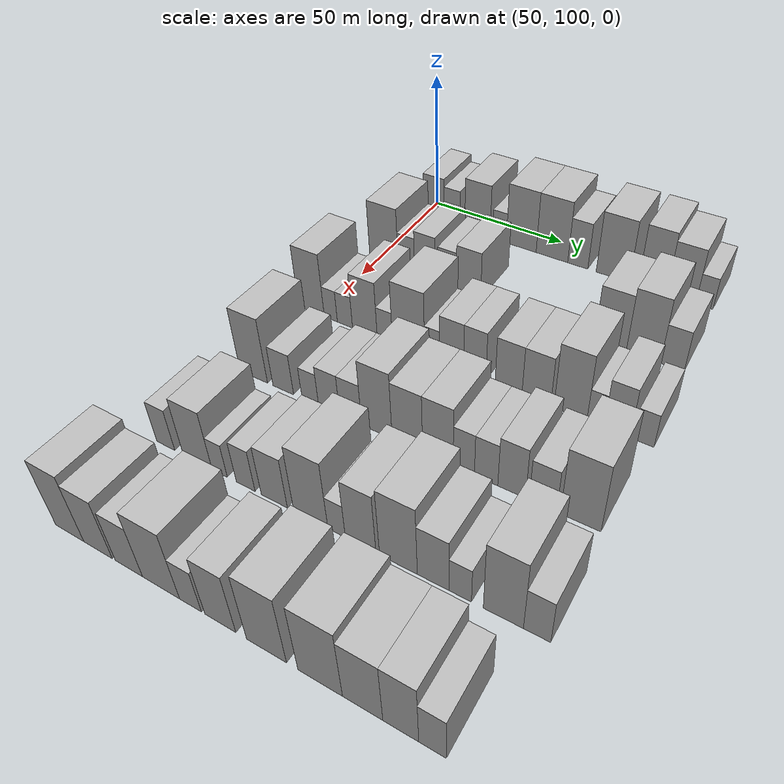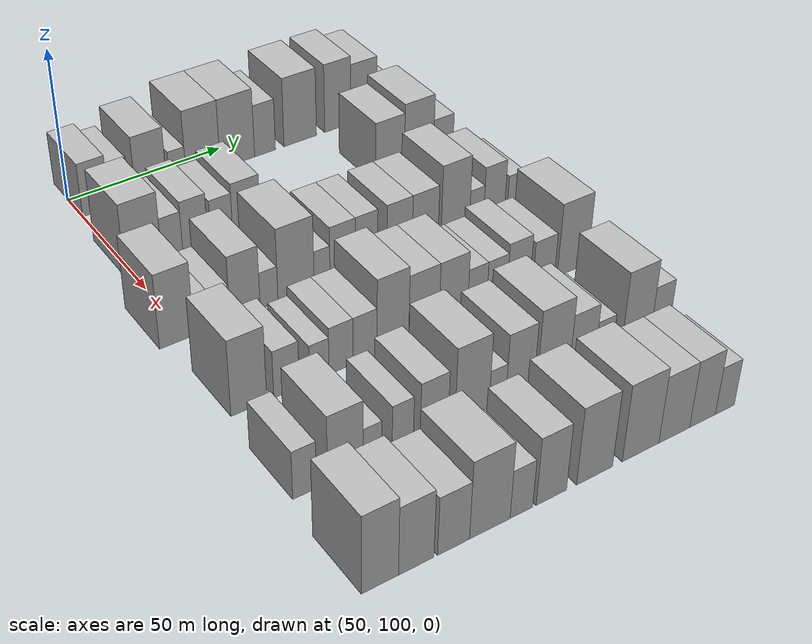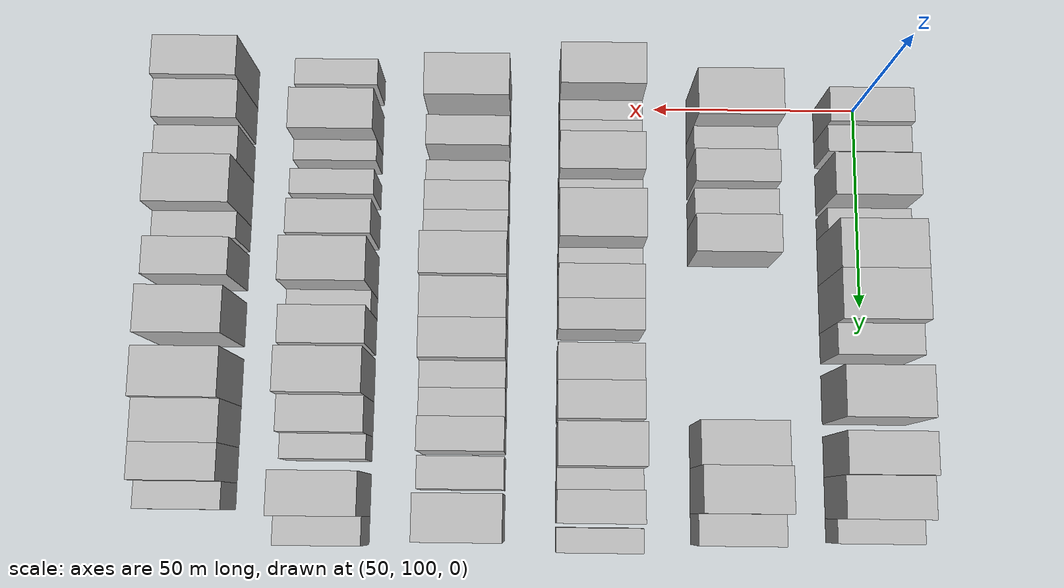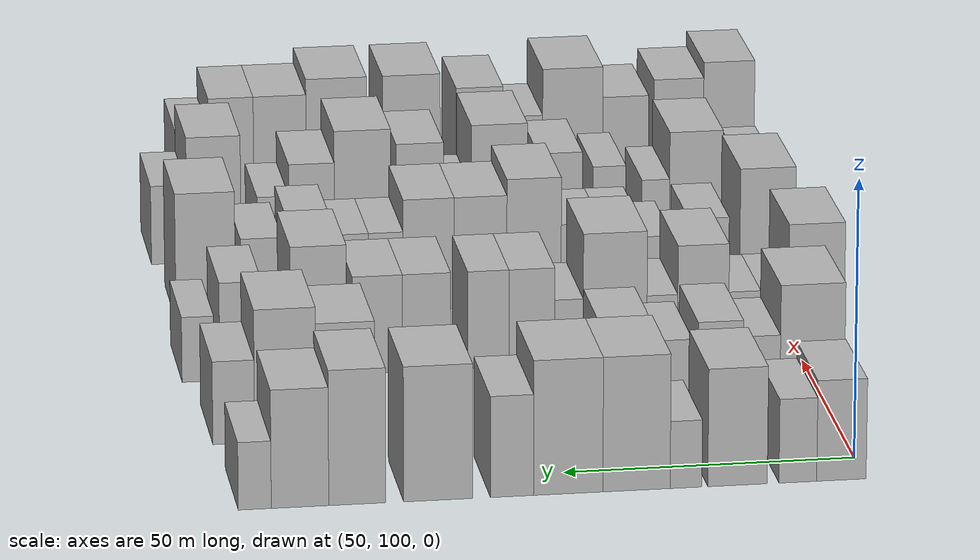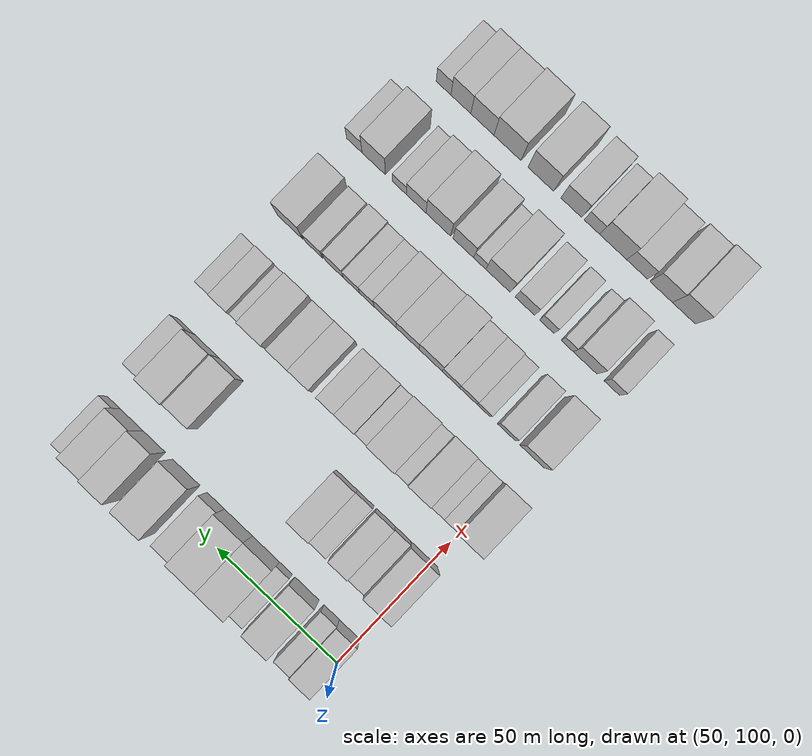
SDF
<sdf version="1.6">
 <world name="default">
  <model name="building_76">
   <static>1</static>
   <pose>50.0000 104.1715 0 0.000000 0.000000 0.000000</pose>
   <link name="link">
    <pose>0 0 9.00 0 0 0</pose>
    <collision name="collision"><geometry><box><size>20.0000 8.4685 18.0000</size></box></geometry></collision>
    <visual name="visual">
     <cast_shadows>0</cast_shadows>
     <geometry><box><size>20.0000 8.4685 18.0000</size></box></geometry>
     <material>
      <script>
       <uri>model://HANNAS_wall/materials/scripts</uri>
       <uri>model://HANNAS_wall/materials/textures</uri>
       <name>vrc/HANNAS_wall</name>
      </script>
     </material>
    </visual>
   </link>
  </model>
  <model name="building_77">
   <static>1</static>
   <pose>50.0000 111.6407 0 0.000000 0.000000 0.000000</pose>
   <link name="link">
    <pose>0 0 7.50 0 0 0</pose>
    <collision name="collision"><geometry><box><size>20.0000 6.4699 15.0000</size></box></geometry></collision>
    <visual name="visual">
     <cast_shadows>0</cast_shadows>
     <geometry><box><size>20.0000 6.4699 15.0000</size></box></geometry>
     <material>
      <script>
       <uri>model://HANNAS_wall/materials/scripts</uri>
       <uri>model://HANNAS_wall/materials/textures</uri>
       <name>vrc/HANNAS_wall</name>
      </script>
     </material>
    </visual>
   </link>
  </model>
  <model name="building_78">
   <static>1</static>
   <pose>50.0000 121.9559 0 0.000000 0.000000 0.000000</pose>
   <link name="link">
    <pose>0 0 10.50 0 0 0</pose>
    <collision name="collision"><geometry><box><size>20.0000 10.1604 21.0000</size></box></geometry></collision>
    <visual name="visual">
     <cast_shadows>0</cast_shadows>
     <geometry><box><size>20.0000 10.1604 21.0000</size></box></geometry>
     <material>
      <script>
       <uri>model://HANNAS_wall/materials/scripts</uri>
       <uri>model://HANNAS_wall/materials/textures</uri>
       <name>vrc/HANNAS_wall</name>
      </script>
     </material>
    </visual>
   </link>
  </model>
  <model name="building_79">
   <static>1</static>
   <pose>50.0000 130.7467 0 0.000000 0.000000 0.000000</pose>
   <link name="link">
    <pose>0 0 6.00 0 0 0</pose>
    <collision name="collision"><geometry><box><size>20.0000 5.4213 12.0000</size></box></geometry></collision>
    <visual name="visual">
     <cast_shadows>0</cast_shadows>
     <geometry><box><size>20.0000 5.4213 12.0000</size></box></geometry>
     <material>
      <script>
       <uri>model://HANNAS_wall/materials/scripts</uri>
       <uri>model://HANNAS_wall/materials/textures</uri>
       <name>vrc/HANNAS_wall</name>
      </script>
     </material>
    </visual>
   </link>
  </model>
  <model name="building_80">
   <static>1</static>
   <pose>50.0000 139.1861 0 0.000000 0.000000 0.000000</pose>
   <link name="link">
    <pose>0 0 12.00 0 0 0</pose>
    <collision name="collision"><geometry><box><size>20.0000 11.4577 24.0000</size></box></geometry></collision>
    <visual name="visual">
     <cast_shadows>0</cast_shadows>
     <geometry><box><size>20.0000 11.4577 24.0000</size></box></geometry>
     <material>
      <script>
       <uri>model://HANNAS_wall/materials/scripts</uri>
       <uri>model://HANNAS_wall/materials/textures</uri>
       <name>vrc/HANNAS_wall</name>
      </script>
     </material>
    </visual>
   </link>
  </model>
  <model name="building_81">
   <static>1</static>
   <pose>50.0000 150.8063 0 0.000000 0.000000 0.000000</pose>
   <link name="link">
    <pose>0 0 12.00 0 0 0</pose>
    <collision name="collision"><geometry><box><size>20.0000 11.7827 24.0000</size></box></geometry></collision>
    <visual name="visual">
     <cast_shadows>0</cast_shadows>
     <geometry><box><size>20.0000 11.7827 24.0000</size></box></geometry>
     <material>
      <script>
       <uri>model://HANNAS_wall/materials/scripts</uri>
       <uri>model://HANNAS_wall/materials/textures</uri>
       <name>vrc/HANNAS_wall</name>
      </script>
     </material>
    </visual>
   </link>
  </model>
  <model name="building_82">
   <static>1</static>
   <pose>50.0000 160.3540 0 0.000000 0.000000 0.000000</pose>
   <link name="link">
    <pose>0 0 9.00 0 0 0</pose>
    <collision name="collision"><geometry><box><size>20.0000 7.3127 18.0000</size></box></geometry></collision>
    <visual name="visual">
     <cast_shadows>0</cast_shadows>
     <geometry><box><size>20.0000 7.3127 18.0000</size></box></geometry>
     <material>
      <script>
       <uri>model://HANNAS_wall/materials/scripts</uri>
       <uri>model://HANNAS_wall/materials/textures</uri>
       <name>vrc/HANNAS_wall</name>
      </script>
     </material>
    </visual>
   </link>
  </model>
  <model name="building_83">
   <static>1</static>
   <pose>50.0000 172.8455 0 0.000000 0.000000 0.000000</pose>
   <link name="link">
    <pose>0 0 12.00 0 0 0</pose>
    <collision name="collision"><geometry><box><size>20.0000 11.6702 24.0000</size></box></geometry></collision>
    <visual name="visual">
     <cast_shadows>0</cast_shadows>
     <geometry><box><size>20.0000 11.6702 24.0000</size></box></geometry>
     <material>
      <script>
       <uri>model://HANNAS_wall/materials/scripts</uri>
       <uri>model://HANNAS_wall/materials/textures</uri>
       <name>vrc/HANNAS_wall</name>
      </script>
     </material>
    </visual>
   </link>
  </model>
  <model name="building_84">
   <static>1</static>
   <pose>50.0000 186.4959 0 0.000000 0.000000 0.000000</pose>
   <link name="link">
    <pose>0 0 12.00 0 0 0</pose>
    <collision name="collision"><geometry><box><size>20.0000 9.6305 24.0000</size></box></geometry></collision>
    <visual name="visual">
     <cast_shadows>0</cast_shadows>
     <geometry><box><size>20.0000 9.6305 24.0000</size></box></geometry>
     <material>
      <script>
       <uri>model://HANNAS_wall/materials/scripts</uri>
       <uri>model://HANNAS_wall/materials/textures</uri>
       <name>vrc/HANNAS_wall</name>
      </script>
     </material>
    </visual>
   </link>
  </model>
  <model name="building_85">
   <static>1</static>
   <pose>50.0000 196.1493 0 0.000000 0.000000 0.000000</pose>
   <link name="link">
    <pose>0 0 10.50 0 0 0</pose>
    <collision name="collision"><geometry><box><size>20.0000 9.6764 21.0000</size></box></geometry></collision>
    <visual name="visual">
     <cast_shadows>0</cast_shadows>
     <geometry><box><size>20.0000 9.6764 21.0000</size></box></geometry>
     <material>
      <script>
       <uri>model://HANNAS_wall/materials/scripts</uri>
       <uri>model://HANNAS_wall/materials/textures</uri>
       <name>vrc/HANNAS_wall</name>
      </script>
     </material>
    </visual>
   </link>
  </model>
  <model name="building_86">
   <static>1</static>
   <pose>50.0000 203.7623 0 0.000000 0.000000 0.000000</pose>
   <link name="link">
    <pose>0 0 6.00 0 0 0</pose>
    <collision name="collision"><geometry><box><size>20.0000 5.5496 12.0000</size></box></geometry></collision>
    <visual name="visual">
     <cast_shadows>0</cast_shadows>
     <geometry><box><size>20.0000 5.5496 12.0000</size></box></geometry>
     <material>
      <script>
       <uri>model://HANNAS_wall/materials/scripts</uri>
       <uri>model://HANNAS_wall/materials/textures</uri>
       <name>vrc/HANNAS_wall</name>
      </script>
     </material>
    </visual>
   </link>
  </model>
  <model name="building_192">
   <static>1</static>
   <pose>82.0000 103.3964 0 0.000000 0.000000 0.000000</pose>
   <link name="link">
    <pose>0 0 12.00 0 0 0</pose>
    <collision name="collision"><geometry><box><size>20.0000 11.2871 24.0000</size></box></geometry></collision>
    <visual name="visual">
     <cast_shadows>0</cast_shadows>
     <geometry><box><size>20.0000 11.2871 24.0000</size></box></geometry>
     <material>
      <script>
       <uri>model://HANNAS_wall/materials/scripts</uri>
       <uri>model://HANNAS_wall/materials/textures</uri>
       <name>vrc/HANNAS_wall</name>
      </script>
     </material>
    </visual>
   </link>
  </model>
  <model name="building_193">
   <static>1</static>
   <pose>82.0000 112.2754 0 0.000000 0.000000 0.000000</pose>
   <link name="link">
    <pose>0 0 7.50 0 0 0</pose>
    <collision name="collision"><geometry><box><size>20.0000 6.4709 15.0000</size></box></geometry></collision>
    <visual name="visual">
     <cast_shadows>0</cast_shadows>
     <geometry><box><size>20.0000 6.4709 15.0000</size></box></geometry>
     <material>
      <script>
       <uri>model://HANNAS_wall/materials/scripts</uri>
       <uri>model://HANNAS_wall/materials/textures</uri>
       <name>vrc/HANNAS_wall</name>
      </script>
     </material>
    </visual>
   </link>
  </model>
  <model name="building_194">
   <static>1</static>
   <pose>82.0000 119.4606 0 0.000000 0.000000 0.000000</pose>
   <link name="link">
    <pose>0 0 9.00 0 0 0</pose>
    <collision name="collision"><geometry><box><size>20.0000 7.8996 18.0000</size></box></geometry></collision>
    <visual name="visual">
     <cast_shadows>0</cast_shadows>
     <geometry><box><size>20.0000 7.8996 18.0000</size></box></geometry>
     <material>
      <script>
       <uri>model://HANNAS_wall/materials/scripts</uri>
       <uri>model://HANNAS_wall/materials/textures</uri>
       <name>vrc/HANNAS_wall</name>
      </script>
     </material>
    </visual>
   </link>
  </model>
  <model name="building_195">
   <static>1</static>
   <pose>82.0000 127.8523 0 0.000000 0.000000 0.000000</pose>
   <link name="link">
    <pose>0 0 7.50 0 0 0</pose>
    <collision name="collision"><geometry><box><size>20.0000 6.8837 15.0000</size></box></geometry></collision>
    <visual name="visual">
     <cast_shadows>0</cast_shadows>
     <geometry><box><size>20.0000 6.8837 15.0000</size></box></geometry>
     <material>
      <script>
       <uri>model://HANNAS_wall/materials/scripts</uri>
       <uri>model://HANNAS_wall/materials/textures</uri>
       <name>vrc/HANNAS_wall</name>
      </script>
     </material>
    </visual>
   </link>
  </model>
  <model name="building_196">
   <static>1</static>
   <pose>82.0000 135.7902 0 0.000000 0.000000 0.000000</pose>
   <link name="link">
    <pose>0 0 9.00 0 0 0</pose>
    <collision name="collision"><geometry><box><size>20.0000 8.9922 18.0000</size></box></geometry></collision>
    <visual name="visual">
     <cast_shadows>0</cast_shadows>
     <geometry><box><size>20.0000 8.9922 18.0000</size></box></geometry>
     <material>
      <script>
       <uri>model://HANNAS_wall/materials/scripts</uri>
       <uri>model://HANNAS_wall/materials/textures</uri>
       <name>vrc/HANNAS_wall</name>
      </script>
     </material>
    </visual>
   </link>
  </model>
  <model name="building_197">
   <static>1</static>
   <pose>82.0000 184.5183 0 0.000000 0.000000 0.000000</pose>
   <link name="link">
    <pose>0 0 10.50 0 0 0</pose>
    <collision name="collision"><geometry><box><size>20.0000 10.1546 21.0000</size></box></geometry></collision>
    <visual name="visual">
     <cast_shadows>0</cast_shadows>
     <geometry><box><size>20.0000 10.1546 21.0000</size></box></geometry>
     <material>
      <script>
       <uri>model://HANNAS_wall/materials/scripts</uri>
       <uri>model://HANNAS_wall/materials/textures</uri>
       <name>vrc/HANNAS_wall</name>
      </script>
     </material>
    </visual>
   </link>
  </model>
  <model name="building_198">
   <static>1</static>
   <pose>82.0000 194.8833 0 0.000000 0.000000 0.000000</pose>
   <link name="link">
    <pose>0 0 12.00 0 0 0</pose>
    <collision name="collision"><geometry><box><size>20.0000 10.5754 24.0000</size></box></geometry></collision>
    <visual name="visual">
     <cast_shadows>0</cast_shadows>
     <geometry><box><size>20.0000 10.5754 24.0000</size></box></geometry>
     <material>
      <script>
       <uri>model://HANNAS_wall/materials/scripts</uri>
       <uri>model://HANNAS_wall/materials/textures</uri>
       <name>vrc/HANNAS_wall</name>
      </script>
     </material>
    </visual>
   </link>
  </model>
  <model name="building_199">
   <static>1</static>
   <pose>82.0000 203.7714 0 0.000000 0.000000 0.000000</pose>
   <link name="link">
    <pose>0 0 7.50 0 0 0</pose>
    <collision name="collision"><geometry><box><size>20.0000 7.2008 15.0000</size></box></geometry></collision>
    <visual name="visual">
     <cast_shadows>0</cast_shadows>
     <geometry><box><size>20.0000 7.2008 15.0000</size></box></geometry>
     <material>
      <script>
       <uri>model://HANNAS_wall/materials/scripts</uri>
       <uri>model://HANNAS_wall/materials/textures</uri>
       <name>vrc/HANNAS_wall</name>
      </script>
     </material>
    </visual>
   </link>
  </model>
  <model name="building_307">
   <static>1</static>
   <pose>114.0000 96.8262 0 0.000000 0.000000 0.000000</pose>
   <link name="link">
    <pose>0 0 12.00 0 0 0</pose>
    <collision name="collision"><geometry><box><size>20.0000 10.0114 24.0000</size></box></geometry></collision>
    <visual name="visual">
     <cast_shadows>0</cast_shadows>
     <geometry><box><size>20.0000 10.0114 24.0000</size></box></geometry>
     <material>
      <script>
       <uri>model://HANNAS_wall/materials/scripts</uri>
       <uri>model://HANNAS_wall/materials/textures</uri>
       <name>vrc/HANNAS_wall</name>
      </script>
     </material>
    </visual>
   </link>
  </model>
  <model name="building_308">
   <static>1</static>
   <pose>114.0000 104.3296 0 0.000000 0.000000 0.000000</pose>
   <link name="link">
    <pose>0 0 6.00 0 0 0</pose>
    <collision name="collision"><geometry><box><size>20.0000 4.9955 12.0000</size></box></geometry></collision>
    <visual name="visual">
     <cast_shadows>0</cast_shadows>
     <geometry><box><size>20.0000 4.9955 12.0000</size></box></geometry>
     <material>
      <script>
       <uri>model://HANNAS_wall/materials/scripts</uri>
       <uri>model://HANNAS_wall/materials/textures</uri>
       <name>vrc/HANNAS_wall</name>
      </script>
     </material>
    </visual>
   </link>
  </model>
  <model name="building_309">
   <static>1</static>
   <pose>114.0000 109.6727 0 0.000000 0.000000 0.000000</pose>
   <link name="link">
    <pose>0 0 6.00 0 0 0</pose>
    <collision name="collision"><geometry><box><size>20.0000 5.6907 12.0000</size></box></geometry></collision>
    <visual name="visual">
     <cast_shadows>0</cast_shadows>
     <geometry><box><size>20.0000 5.6907 12.0000</size></box></geometry>
     <material>
      <script>
       <uri>model://HANNAS_wall/materials/scripts</uri>
       <uri>model://HANNAS_wall/materials/textures</uri>
       <name>vrc/HANNAS_wall</name>
      </script>
     </material>
    </visual>
   </link>
  </model>
  <model name="building_310">
   <static>1</static>
   <pose>114.0000 117.0774 0 0.000000 0.000000 0.000000</pose>
   <link name="link">
    <pose>0 0 10.50 0 0 0</pose>
    <collision name="collision"><geometry><box><size>20.0000 9.1187 21.0000</size></box></geometry></collision>
    <visual name="visual">
     <cast_shadows>0</cast_shadows>
     <geometry><box><size>20.0000 9.1187 21.0000</size></box></geometry>
     <material>
      <script>
       <uri>model://HANNAS_wall/materials/scripts</uri>
       <uri>model://HANNAS_wall/materials/textures</uri>
       <name>vrc/HANNAS_wall</name>
      </script>
     </material>
    </visual>
   </link>
  </model>
  <model name="building_311">
   <static>1</static>
   <pose>114.0000 124.3781 0 0.000000 0.000000 0.000000</pose>
   <link name="link">
    <pose>0 0 6.00 0 0 0</pose>
    <collision name="collision"><geometry><box><size>20.0000 5.4827 12.0000</size></box></geometry></collision>
    <visual name="visual">
     <cast_shadows>0</cast_shadows>
     <geometry><box><size>20.0000 5.4827 12.0000</size></box></geometry>
     <material>
      <script>
       <uri>model://HANNAS_wall/materials/scripts</uri>
       <uri>model://HANNAS_wall/materials/textures</uri>
       <name>vrc/HANNAS_wall</name>
      </script>
     </material>
    </visual>
   </link>
  </model>
  <model name="building_312">
   <static>1</static>
   <pose>114.0000 132.7895 0 0.000000 0.000000 0.000000</pose>
   <link name="link">
    <pose>0 0 12.00 0 0 0</pose>
    <collision name="collision"><geometry><box><size>20.0000 11.3403 24.0000</size></box></geometry></collision>
    <visual name="visual">
     <cast_shadows>0</cast_shadows>
     <geometry><box><size>20.0000 11.3403 24.0000</size></box></geometry>
     <material>
      <script>
       <uri>model://HANNAS_wall/materials/scripts</uri>
       <uri>model://HANNAS_wall/materials/textures</uri>
       <name>vrc/HANNAS_wall</name>
      </script>
     </material>
    </visual>
   </link>
  </model>
  <model name="building_313">
   <static>1</static>
   <pose>114.0000 140.9720 0 0.000000 0.000000 0.000000</pose>
   <link name="link">
    <pose>0 0 6.00 0 0 0</pose>
    <collision name="collision"><geometry><box><size>20.0000 5.0246 12.0000</size></box></geometry></collision>
    <visual name="visual">
     <cast_shadows>0</cast_shadows>
     <geometry><box><size>20.0000 5.0246 12.0000</size></box></geometry>
     <material>
      <script>
       <uri>model://HANNAS_wall/materials/scripts</uri>
       <uri>model://HANNAS_wall/materials/textures</uri>
       <name>vrc/HANNAS_wall</name>
      </script>
     </material>
    </visual>
   </link>
  </model>
  <model name="building_314">
   <static>1</static>
   <pose>114.0000 147.5635 0 0.000000 0.000000 0.000000</pose>
   <link name="link">
    <pose>0 0 9.00 0 0 0</pose>
    <collision name="collision"><geometry><box><size>20.0000 8.1584 18.0000</size></box></geometry></collision>
    <visual name="visual">
     <cast_shadows>0</cast_shadows>
     <geometry><box><size>20.0000 8.1584 18.0000</size></box></geometry>
     <material>
      <script>
       <uri>model://HANNAS_wall/materials/scripts</uri>
       <uri>model://HANNAS_wall/materials/textures</uri>
       <name>vrc/HANNAS_wall</name>
      </script>
     </material>
    </visual>
   </link>
  </model>
  <model name="building_315">
   <static>1</static>
   <pose>114.0000 155.2953 0 0.000000 0.000000 0.000000</pose>
   <link name="link">
    <pose>0 0 9.00 0 0 0</pose>
    <collision name="collision"><geometry><box><size>20.0000 7.3053 18.0000</size></box></geometry></collision>
    <visual name="visual">
     <cast_shadows>0</cast_shadows>
     <geometry><box><size>20.0000 7.3053 18.0000</size></box></geometry>
     <material>
      <script>
       <uri>model://HANNAS_wall/materials/scripts</uri>
       <uri>model://HANNAS_wall/materials/textures</uri>
       <name>vrc/HANNAS_wall</name>
      </script>
     </material>
    </visual>
   </link>
  </model>
  <model name="building_316">
   <static>1</static>
   <pose>114.0000 166.2115 0 0.000000 0.000000 0.000000</pose>
   <link name="link">
    <pose>0 0 9.00 0 0 0</pose>
    <collision name="collision"><geometry><box><size>20.0000 8.5270 18.0000</size></box></geometry></collision>
    <visual name="visual">
     <cast_shadows>0</cast_shadows>
     <geometry><box><size>20.0000 8.5270 18.0000</size></box></geometry>
     <material>
      <script>
       <uri>model://HANNAS_wall/materials/scripts</uri>
       <uri>model://HANNAS_wall/materials/textures</uri>
       <name>vrc/HANNAS_wall</name>
      </script>
     </material>
    </visual>
   </link>
  </model>
  <model name="building_317">
   <static>1</static>
   <pose>114.0000 174.9033 0 0.000000 0.000000 0.000000</pose>
   <link name="link">
    <pose>0 0 9.00 0 0 0</pose>
    <collision name="collision"><geometry><box><size>20.0000 8.8566 18.0000</size></box></geometry></collision>
    <visual name="visual">
     <cast_shadows>0</cast_shadows>
     <geometry><box><size>20.0000 8.8566 18.0000</size></box></geometry>
     <material>
      <script>
       <uri>model://HANNAS_wall/materials/scripts</uri>
       <uri>model://HANNAS_wall/materials/textures</uri>
       <name>vrc/HANNAS_wall</name>
      </script>
     </material>
    </visual>
   </link>
  </model>
  <model name="building_318">
   <static>1</static>
   <pose>114.0000 185.2588 0 0.000000 0.000000 0.000000</pose>
   <link name="link">
    <pose>0 0 12.00 0 0 0</pose>
    <collision name="collision"><geometry><box><size>20.0000 9.8544 24.0000</size></box></geometry></collision>
    <visual name="visual">
     <cast_shadows>0</cast_shadows>
     <geometry><box><size>20.0000 9.8544 24.0000</size></box></geometry>
     <material>
      <script>
       <uri>model://HANNAS_wall/materials/scripts</uri>
       <uri>model://HANNAS_wall/materials/textures</uri>
       <name>vrc/HANNAS_wall</name>
      </script>
     </material>
    </visual>
   </link>
  </model>
  <model name="building_319">
   <static>1</static>
   <pose>114.0000 192.6912 0 0.000000 0.000000 0.000000</pose>
   <link name="link">
    <pose>0 0 6.00 0 0 0</pose>
    <collision name="collision"><geometry><box><size>20.0000 5.0103 12.0000</size></box></geometry></collision>
    <visual name="visual">
     <cast_shadows>0</cast_shadows>
     <geometry><box><size>20.0000 5.0103 12.0000</size></box></geometry>
     <material>
      <script>
       <uri>model://HANNAS_wall/materials/scripts</uri>
       <uri>model://HANNAS_wall/materials/textures</uri>
       <name>vrc/HANNAS_wall</name>
      </script>
     </material>
    </visual>
   </link>
  </model>
  <model name="building_320">
   <static>1</static>
   <pose>114.0000 198.9546 0 0.000000 0.000000 0.000000</pose>
   <link name="link">
    <pose>0 0 9.00 0 0 0</pose>
    <collision name="collision"><geometry><box><size>20.0000 7.5167 18.0000</size></box></geometry></collision>
    <visual name="visual">
     <cast_shadows>0</cast_shadows>
     <geometry><box><size>20.0000 7.5167 18.0000</size></box></geometry>
     <material>
      <script>
       <uri>model://HANNAS_wall/materials/scripts</uri>
       <uri>model://HANNAS_wall/materials/textures</uri>
       <name>vrc/HANNAS_wall</name>
      </script>
     </material>
    </visual>
   </link>
  </model>
  <model name="building_321">
   <static>1</static>
   <pose>114.0000 206.5310 0 0.000000 0.000000 0.000000</pose>
   <link name="link">
    <pose>0 0 6.00 0 0 0</pose>
    <collision name="collision"><geometry><box><size>20.0000 5.6360 12.0000</size></box></geometry></collision>
    <visual name="visual">
     <cast_shadows>0</cast_shadows>
     <geometry><box><size>20.0000 5.6360 12.0000</size></box></geometry>
     <material>
      <script>
       <uri>model://HANNAS_wall/materials/scripts</uri>
       <uri>model://HANNAS_wall/materials/textures</uri>
       <name>vrc/HANNAS_wall</name>
      </script>
     </material>
    </visual>
   </link>
  </model>
  <model name="building_428">
   <static>1</static>
   <pose>146.0000 99.9348 0 0.000000 0.000000 0.000000</pose>
   <link name="link">
    <pose>0 0 12.00 0 0 0</pose>
    <collision name="collision"><geometry><box><size>20.0000 10.1229 24.0000</size></box></geometry></collision>
    <visual name="visual">
     <cast_shadows>0</cast_shadows>
     <geometry><box><size>20.0000 10.1229 24.0000</size></box></geometry>
     <material>
      <script>
       <uri>model://HANNAS_wall/materials/scripts</uri>
       <uri>model://HANNAS_wall/materials/textures</uri>
       <name>vrc/HANNAS_wall</name>
      </script>
     </material>
    </visual>
   </link>
  </model>
  <model name="building_429">
   <static>1</static>
   <pose>146.0000 110.6787 0 0.000000 0.000000 0.000000</pose>
   <link name="link">
    <pose>0 0 7.50 0 0 0</pose>
    <collision name="collision"><geometry><box><size>20.0000 7.3650 15.0000</size></box></geometry></collision>
    <visual name="visual">
     <cast_shadows>0</cast_shadows>
     <geometry><box><size>20.0000 7.3650 15.0000</size></box></geometry>
     <material>
      <script>
       <uri>model://HANNAS_wall/materials/scripts</uri>
       <uri>model://HANNAS_wall/materials/textures</uri>
       <name>vrc/HANNAS_wall</name>
      </script>
     </material>
    </visual>
   </link>
  </model>
  <model name="building_430">
   <static>1</static>
   <pose>146.0000 120.2391 0 0.000000 0.000000 0.000000</pose>
   <link name="link">
    <pose>0 0 6.00 0 0 0</pose>
    <collision name="collision"><geometry><box><size>20.0000 5.7556 12.0000</size></box></geometry></collision>
    <visual name="visual">
     <cast_shadows>0</cast_shadows>
     <geometry><box><size>20.0000 5.7556 12.0000</size></box></geometry>
     <material>
      <script>
       <uri>model://HANNAS_wall/materials/scripts</uri>
       <uri>model://HANNAS_wall/materials/textures</uri>
       <name>vrc/HANNAS_wall</name>
      </script>
     </material>
    </visual>
   </link>
  </model>
  <model name="building_431">
   <static>1</static>
   <pose>146.0000 126.7109 0 0.000000 0.000000 0.000000</pose>
   <link name="link">
    <pose>0 0 7.50 0 0 0</pose>
    <collision name="collision"><geometry><box><size>20.0000 7.1880 15.0000</size></box></geometry></collision>
    <visual name="visual">
     <cast_shadows>0</cast_shadows>
     <geometry><box><size>20.0000 7.1880 15.0000</size></box></geometry>
     <material>
      <script>
       <uri>model://HANNAS_wall/materials/scripts</uri>
       <uri>model://HANNAS_wall/materials/textures</uri>
       <name>vrc/HANNAS_wall</name>
      </script>
     </material>
    </visual>
   </link>
  </model>
  <model name="building_432">
   <static>1</static>
   <pose>146.0000 133.9308 0 0.000000 0.000000 0.000000</pose>
   <link name="link">
    <pose>0 0 7.50 0 0 0</pose>
    <collision name="collision"><geometry><box><size>20.0000 7.2519 15.0000</size></box></geometry></collision>
    <visual name="visual">
     <cast_shadows>0</cast_shadows>
     <geometry><box><size>20.0000 7.2519 15.0000</size></box></geometry>
     <material>
      <script>
       <uri>model://HANNAS_wall/materials/scripts</uri>
       <uri>model://HANNAS_wall/materials/textures</uri>
       <name>vrc/HANNAS_wall</name>
      </script>
     </material>
    </visual>
   </link>
  </model>
  <model name="building_433">
   <static>1</static>
   <pose>146.0000 142.4816 0 0.000000 0.000000 0.000000</pose>
   <link name="link">
    <pose>0 0 12.00 0 0 0</pose>
    <collision name="collision"><geometry><box><size>20.0000 9.8499 24.0000</size></box></geometry></collision>
    <visual name="visual">
     <cast_shadows>0</cast_shadows>
     <geometry><box><size>20.0000 9.8499 24.0000</size></box></geometry>
     <material>
      <script>
       <uri>model://HANNAS_wall/materials/scripts</uri>
       <uri>model://HANNAS_wall/materials/textures</uri>
       <name>vrc/HANNAS_wall</name>
      </script>
     </material>
    </visual>
   </link>
  </model>
  <model name="building_434">
   <static>1</static>
   <pose>146.0000 152.1713 0 0.000000 0.000000 0.000000</pose>
   <link name="link">
    <pose>0 0 10.50 0 0 0</pose>
    <collision name="collision"><geometry><box><size>20.0000 9.5295 21.0000</size></box></geometry></collision>
    <visual name="visual">
     <cast_shadows>0</cast_shadows>
     <geometry><box><size>20.0000 9.5295 21.0000</size></box></geometry>
     <material>
      <script>
       <uri>model://HANNAS_wall/materials/scripts</uri>
       <uri>model://HANNAS_wall/materials/textures</uri>
       <name>vrc/HANNAS_wall</name>
      </script>
     </material>
    </visual>
   </link>
  </model>
  <model name="building_435">
   <static>1</static>
   <pose>146.0000 161.5488 0 0.000000 0.000000 0.000000</pose>
   <link name="link">
    <pose>0 0 10.50 0 0 0</pose>
    <collision name="collision"><geometry><box><size>20.0000 9.2253 21.0000</size></box></geometry></collision>
    <visual name="visual">
     <cast_shadows>0</cast_shadows>
     <geometry><box><size>20.0000 9.2253 21.0000</size></box></geometry>
     <material>
      <script>
       <uri>model://HANNAS_wall/materials/scripts</uri>
       <uri>model://HANNAS_wall/materials/textures</uri>
       <name>vrc/HANNAS_wall</name>
      </script>
     </material>
    </visual>
   </link>
  </model>
  <model name="building_436">
   <static>1</static>
   <pose>146.0000 169.2895 0 0.000000 0.000000 0.000000</pose>
   <link name="link">
    <pose>0 0 7.50 0 0 0</pose>
    <collision name="collision"><geometry><box><size>20.0000 6.2562 15.0000</size></box></geometry></collision>
    <visual name="visual">
     <cast_shadows>0</cast_shadows>
     <geometry><box><size>20.0000 6.2562 15.0000</size></box></geometry>
     <material>
      <script>
       <uri>model://HANNAS_wall/materials/scripts</uri>
       <uri>model://HANNAS_wall/materials/textures</uri>
       <name>vrc/HANNAS_wall</name>
      </script>
     </material>
    </visual>
   </link>
  </model>
  <model name="building_437">
   <static>1</static>
   <pose>146.0000 175.7855 0 0.000000 0.000000 0.000000</pose>
   <link name="link">
    <pose>0 0 7.50 0 0 0</pose>
    <collision name="collision"><geometry><box><size>20.0000 6.7357 15.0000</size></box></geometry></collision>
    <visual name="visual">
     <cast_shadows>0</cast_shadows>
     <geometry><box><size>20.0000 6.7357 15.0000</size></box></geometry>
     <material>
      <script>
       <uri>model://HANNAS_wall/materials/scripts</uri>
       <uri>model://HANNAS_wall/materials/textures</uri>
       <name>vrc/HANNAS_wall</name>
      </script>
     </material>
    </visual>
   </link>
  </model>
  <model name="building_438">
   <static>1</static>
   <pose>146.0000 183.0532 0 0.000000 0.000000 0.000000</pose>
   <link name="link">
    <pose>0 0 9.00 0 0 0</pose>
    <collision name="collision"><geometry><box><size>20.0000 7.7998 18.0000</size></box></geometry></collision>
    <visual name="visual">
     <cast_shadows>0</cast_shadows>
     <geometry><box><size>20.0000 7.7998 18.0000</size></box></geometry>
     <material>
      <script>
       <uri>model://HANNAS_wall/materials/scripts</uri>
       <uri>model://HANNAS_wall/materials/textures</uri>
       <name>vrc/HANNAS_wall</name>
      </script>
     </material>
    </visual>
   </link>
  </model>
  <model name="building_439">
   <static>1</static>
   <pose>146.0000 191.6934 0 0.000000 0.000000 0.000000</pose>
   <link name="link">
    <pose>0 0 7.50 0 0 0</pose>
    <collision name="collision"><geometry><box><size>20.0000 7.4807 15.0000</size></box></geometry></collision>
    <visual name="visual">
     <cast_shadows>0</cast_shadows>
     <geometry><box><size>20.0000 7.4807 15.0000</size></box></geometry>
     <material>
      <script>
       <uri>model://HANNAS_wall/materials/scripts</uri>
       <uri>model://HANNAS_wall/materials/textures</uri>
       <name>vrc/HANNAS_wall</name>
      </script>
     </material>
    </visual>
   </link>
  </model>
  <model name="building_440">
   <static>1</static>
   <pose>146.0000 201.7833 0 0.000000 0.000000 0.000000</pose>
   <link name="link">
    <pose>0 0 12.00 0 0 0</pose>
    <collision name="collision"><geometry><box><size>20.0000 10.6990 24.0000</size></box></geometry></collision>
    <visual name="visual">
     <cast_shadows>0</cast_shadows>
     <geometry><box><size>20.0000 10.6990 24.0000</size></box></geometry>
     <material>
      <script>
       <uri>model://HANNAS_wall/materials/scripts</uri>
       <uri>model://HANNAS_wall/materials/textures</uri>
       <name>vrc/HANNAS_wall</name>
      </script>
     </material>
    </visual>
   </link>
  </model>
  <model name="building_550">
   <static>1</static>
   <pose>178.0000 96.4340 0 0.000000 0.000000 0.000000</pose>
   <link name="link">
    <pose>0 0 7.50 0 0 0</pose>
    <collision name="collision"><geometry><box><size>20.0000 6.4517 15.0000</size></box></geometry></collision>
    <visual name="visual">
     <cast_shadows>0</cast_shadows>
     <geometry><box><size>20.0000 6.4517 15.0000</size></box></geometry>
     <material>
      <script>
       <uri>model://HANNAS_wall/materials/scripts</uri>
       <uri>model://HANNAS_wall/materials/textures</uri>
       <name>vrc/HANNAS_wall</name>
      </script>
     </material>
    </visual>
   </link>
  </model>
  <model name="building_551">
   <static>1</static>
   <pose>178.0000 107.6170 0 0.000000 0.000000 0.000000</pose>
   <link name="link">
    <pose>0 0 10.50 0 0 0</pose>
    <collision name="collision"><geometry><box><size>20.0000 9.9144 21.0000</size></box></geometry></collision>
    <visual name="visual">
     <cast_shadows>0</cast_shadows>
     <geometry><box><size>20.0000 9.9144 21.0000</size></box></geometry>
     <material>
      <script>
       <uri>model://HANNAS_wall/materials/scripts</uri>
       <uri>model://HANNAS_wall/materials/textures</uri>
       <name>vrc/HANNAS_wall</name>
      </script>
     </material>
    </visual>
   </link>
  </model>
  <model name="building_552">
   <static>1</static>
   <pose>178.0000 115.1410 0 0.000000 0.000000 0.000000</pose>
   <link name="link">
    <pose>0 0 6.00 0 0 0</pose>
    <collision name="collision"><geometry><box><size>20.0000 5.1336 12.0000</size></box></geometry></collision>
    <visual name="visual">
     <cast_shadows>0</cast_shadows>
     <geometry><box><size>20.0000 5.1336 12.0000</size></box></geometry>
     <material>
      <script>
       <uri>model://HANNAS_wall/materials/scripts</uri>
       <uri>model://HANNAS_wall/materials/textures</uri>
       <name>vrc/HANNAS_wall</name>
      </script>
     </material>
    </visual>
   </link>
  </model>
  <model name="building_553">
   <static>1</static>
   <pose>178.0000 123.7543 0 0.000000 0.000000 0.000000</pose>
   <link name="link">
    <pose>0 0 7.50 0 0 0</pose>
    <collision name="collision"><geometry><box><size>20.0000 6.0931 15.0000</size></box></geometry></collision>
    <visual name="visual">
     <cast_shadows>0</cast_shadows>
     <geometry><box><size>20.0000 6.0931 15.0000</size></box></geometry>
     <material>
      <script>
       <uri>model://HANNAS_wall/materials/scripts</uri>
       <uri>model://HANNAS_wall/materials/textures</uri>
       <name>vrc/HANNAS_wall</name>
      </script>
     </material>
    </visual>
   </link>
  </model>
  <model name="building_554">
   <static>1</static>
   <pose>178.0000 132.9093 0 0.000000 0.000000 0.000000</pose>
   <link name="link">
    <pose>0 0 9.00 0 0 0</pose>
    <collision name="collision"><geometry><box><size>20.0000 8.2168 18.0000</size></box></geometry></collision>
    <visual name="visual">
     <cast_shadows>0</cast_shadows>
     <geometry><box><size>20.0000 8.2168 18.0000</size></box></geometry>
     <material>
      <script>
       <uri>model://HANNAS_wall/materials/scripts</uri>
       <uri>model://HANNAS_wall/materials/textures</uri>
       <name>vrc/HANNAS_wall</name>
      </script>
     </material>
    </visual>
   </link>
  </model>
  <model name="building_555">
   <static>1</static>
   <pose>178.0000 144.1871 0 0.000000 0.000000 0.000000</pose>
   <link name="link">
    <pose>0 0 12.00 0 0 0</pose>
    <collision name="collision"><geometry><box><size>20.0000 10.3388 24.0000</size></box></geometry></collision>
    <visual name="visual">
     <cast_shadows>0</cast_shadows>
     <geometry><box><size>20.0000 10.3388 24.0000</size></box></geometry>
     <material>
      <script>
       <uri>model://HANNAS_wall/materials/scripts</uri>
       <uri>model://HANNAS_wall/materials/textures</uri>
       <name>vrc/HANNAS_wall</name>
      </script>
     </material>
    </visual>
   </link>
  </model>
  <model name="building_556">
   <static>1</static>
   <pose>178.0000 151.9250 0 0.000000 0.000000 0.000000</pose>
   <link name="link">
    <pose>0 0 6.00 0 0 0</pose>
    <collision name="collision"><geometry><box><size>20.0000 5.1370 12.0000</size></box></geometry></collision>
    <visual name="visual">
     <cast_shadows>0</cast_shadows>
     <geometry><box><size>20.0000 5.1370 12.0000</size></box></geometry>
     <material>
      <script>
       <uri>model://HANNAS_wall/materials/scripts</uri>
       <uri>model://HANNAS_wall/materials/textures</uri>
       <name>vrc/HANNAS_wall</name>
      </script>
     </material>
    </visual>
   </link>
  </model>
  <model name="building_557">
   <static>1</static>
   <pose>178.0000 158.8788 0 0.000000 0.000000 0.000000</pose>
   <link name="link">
    <pose>0 0 10.50 0 0 0</pose>
    <collision name="collision"><geometry><box><size>20.0000 8.7707 21.0000</size></box></geometry></collision>
    <visual name="visual">
     <cast_shadows>0</cast_shadows>
     <geometry><box><size>20.0000 8.7707 21.0000</size></box></geometry>
     <material>
      <script>
       <uri>model://HANNAS_wall/materials/scripts</uri>
       <uri>model://HANNAS_wall/materials/textures</uri>
       <name>vrc/HANNAS_wall</name>
      </script>
     </material>
    </visual>
   </link>
  </model>
  <model name="building_558">
   <static>1</static>
   <pose>178.0000 169.4690 0 0.000000 0.000000 0.000000</pose>
   <link name="link">
    <pose>0 0 12.00 0 0 0</pose>
    <collision name="collision"><geometry><box><size>20.0000 10.4097 24.0000</size></box></geometry></collision>
    <visual name="visual">
     <cast_shadows>0</cast_shadows>
     <geometry><box><size>20.0000 10.4097 24.0000</size></box></geometry>
     <material>
      <script>
       <uri>model://HANNAS_wall/materials/scripts</uri>
       <uri>model://HANNAS_wall/materials/textures</uri>
       <name>vrc/HANNAS_wall</name>
      </script>
     </material>
    </visual>
   </link>
  </model>
  <model name="building_559">
   <static>1</static>
   <pose>178.0000 178.8609 0 0.000000 0.000000 0.000000</pose>
   <link name="link">
    <pose>0 0 9.00 0 0 0</pose>
    <collision name="collision"><geometry><box><size>20.0000 8.3740 18.0000</size></box></geometry></collision>
    <visual name="visual">
     <cast_shadows>0</cast_shadows>
     <geometry><box><size>20.0000 8.3740 18.0000</size></box></geometry>
     <material>
      <script>
       <uri>model://HANNAS_wall/materials/scripts</uri>
       <uri>model://HANNAS_wall/materials/textures</uri>
       <name>vrc/HANNAS_wall</name>
      </script>
     </material>
    </visual>
   </link>
  </model>
  <model name="building_560">
   <static>1</static>
   <pose>178.0000 185.9624 0 0.000000 0.000000 0.000000</pose>
   <link name="link">
    <pose>0 0 6.00 0 0 0</pose>
    <collision name="collision"><geometry><box><size>20.0000 5.8290 12.0000</size></box></geometry></collision>
    <visual name="visual">
     <cast_shadows>0</cast_shadows>
     <geometry><box><size>20.0000 5.8290 12.0000</size></box></geometry>
     <material>
      <script>
       <uri>model://HANNAS_wall/materials/scripts</uri>
       <uri>model://HANNAS_wall/materials/textures</uri>
       <name>vrc/HANNAS_wall</name>
      </script>
     </material>
    </visual>
   </link>
  </model>
  <model name="building_561">
   <static>1</static>
   <pose>178.0000 196.8418 0 0.000000 0.000000 0.000000</pose>
   <link name="link">
    <pose>0 0 12.00 0 0 0</pose>
    <collision name="collision"><geometry><box><size>20.0000 9.9299 24.0000</size></box></geometry></collision>
    <visual name="visual">
     <cast_shadows>0</cast_shadows>
     <geometry><box><size>20.0000 9.9299 24.0000</size></box></geometry>
     <material>
      <script>
       <uri>model://HANNAS_wall/materials/scripts</uri>
       <uri>model://HANNAS_wall/materials/textures</uri>
       <name>vrc/HANNAS_wall</name>
      </script>
     </material>
    </visual>
   </link>
  </model>
  <model name="building_562">
   <static>1</static>
   <pose>178.0000 205.0853 0 0.000000 0.000000 0.000000</pose>
   <link name="link">
    <pose>0 0 7.50 0 0 0</pose>
    <collision name="collision"><geometry><box><size>20.0000 6.5569 15.0000</size></box></geometry></collision>
    <visual name="visual">
     <cast_shadows>0</cast_shadows>
     <geometry><box><size>20.0000 6.5569 15.0000</size></box></geometry>
     <material>
      <script>
       <uri>model://HANNAS_wall/materials/scripts</uri>
       <uri>model://HANNAS_wall/materials/textures</uri>
       <name>vrc/HANNAS_wall</name>
      </script>
     </material>
    </visual>
   </link>
  </model>
  <model name="building_663">
   <static>1</static>
   <pose>210.0000 96.0391 0 0.000000 0.000000 0.000000</pose>
   <link name="link">
    <pose>0 0 12.00 0 0 0</pose>
    <collision name="collision"><geometry><box><size>20.0000 9.6691 24.0000</size></box></geometry></collision>
    <visual name="visual">
     <cast_shadows>0</cast_shadows>
     <geometry><box><size>20.0000 9.6691 24.0000</size></box></geometry>
     <material>
      <script>
       <uri>model://HANNAS_wall/materials/scripts</uri>
       <uri>model://HANNAS_wall/materials/textures</uri>
       <name>vrc/HANNAS_wall</name>
      </script>
     </material>
    </visual>
   </link>
  </model>
  <model name="building_664">
   <static>1</static>
   <pose>210.0000 105.5985 0 0.000000 0.000000 0.000000</pose>
   <link name="link">
    <pose>0 0 10.50 0 0 0</pose>
    <collision name="collision"><geometry><box><size>20.0000 9.4498 21.0000</size></box></geometry></collision>
    <visual name="visual">
     <cast_shadows>0</cast_shadows>
     <geometry><box><size>20.0000 9.4498 21.0000</size></box></geometry>
     <material>
      <script>
       <uri>model://HANNAS_wall/materials/scripts</uri>
       <uri>model://HANNAS_wall/materials/textures</uri>
       <name>vrc/HANNAS_wall</name>
      </script>
     </material>
    </visual>
   </link>
  </model>
  <model name="building_665">
   <static>1</static>
   <pose>210.0000 115.6796 0 0.000000 0.000000 0.000000</pose>
   <link name="link">
    <pose>0 0 9.00 0 0 0</pose>
    <collision name="collision"><geometry><box><size>20.0000 8.7124 18.0000</size></box></geometry></collision>
    <visual name="visual">
     <cast_shadows>0</cast_shadows>
     <geometry><box><size>20.0000 8.7124 18.0000</size></box></geometry>
     <material>
      <script>
       <uri>model://HANNAS_wall/materials/scripts</uri>
       <uri>model://HANNAS_wall/materials/textures</uri>
       <name>vrc/HANNAS_wall</name>
      </script>
     </material>
    </visual>
   </link>
  </model>
  <model name="building_666">
   <static>1</static>
   <pose>210.0000 125.7315 0 0.000000 0.000000 0.000000</pose>
   <link name="link">
    <pose>0 0 12.00 0 0 0</pose>
    <collision name="collision"><geometry><box><size>20.0000 11.3913 24.0000</size></box></geometry></collision>
    <visual name="visual">
     <cast_shadows>0</cast_shadows>
     <geometry><box><size>20.0000 11.3913 24.0000</size></box></geometry>
     <material>
      <script>
       <uri>model://HANNAS_wall/materials/scripts</uri>
       <uri>model://HANNAS_wall/materials/textures</uri>
       <name>vrc/HANNAS_wall</name>
      </script>
     </material>
    </visual>
   </link>
  </model>
  <model name="building_667">
   <static>1</static>
   <pose>210.0000 134.6706 0 0.000000 0.000000 0.000000</pose>
   <link name="link">
    <pose>0 0 7.50 0 0 0</pose>
    <collision name="collision"><geometry><box><size>20.0000 6.4870 15.0000</size></box></geometry></collision>
    <visual name="visual">
     <cast_shadows>0</cast_shadows>
     <geometry><box><size>20.0000 6.4870 15.0000</size></box></geometry>
     <material>
      <script>
       <uri>model://HANNAS_wall/materials/scripts</uri>
       <uri>model://HANNAS_wall/materials/textures</uri>
       <name>vrc/HANNAS_wall</name>
      </script>
     </material>
    </visual>
   </link>
  </model>
  <model name="building_668">
   <static>1</static>
   <pose>210.0000 143.3495 0 0.000000 0.000000 0.000000</pose>
   <link name="link">
    <pose>0 0 10.50 0 0 0</pose>
    <collision name="collision"><geometry><box><size>20.0000 8.8708 21.0000</size></box></geometry></collision>
    <visual name="visual">
     <cast_shadows>0</cast_shadows>
     <geometry><box><size>20.0000 8.8708 21.0000</size></box></geometry>
     <material>
      <script>
       <uri>model://HANNAS_wall/materials/scripts</uri>
       <uri>model://HANNAS_wall/materials/textures</uri>
       <name>vrc/HANNAS_wall</name>
      </script>
     </material>
    </visual>
   </link>
  </model>
  <model name="building_669">
   <static>1</static>
   <pose>210.0000 156.2171 0 0.000000 0.000000 0.000000</pose>
   <link name="link">
    <pose>0 0 12.00 0 0 0</pose>
    <collision name="collision"><geometry><box><size>20.0000 10.8644 24.0000</size></box></geometry></collision>
    <visual name="visual">
     <cast_shadows>0</cast_shadows>
     <geometry><box><size>20.0000 10.8644 24.0000</size></box></geometry>
     <material>
      <script>
       <uri>model://HANNAS_wall/materials/scripts</uri>
       <uri>model://HANNAS_wall/materials/textures</uri>
       <name>vrc/HANNAS_wall</name>
      </script>
     </material>
    </visual>
   </link>
  </model>
  <model name="building_670">
   <static>1</static>
   <pose>210.0000 170.3592 0 0.000000 0.000000 0.000000</pose>
   <link name="link">
    <pose>0 0 12.00 0 0 0</pose>
    <collision name="collision"><geometry><box><size>20.0000 11.4198 24.0000</size></box></geometry></collision>
    <visual name="visual">
     <cast_shadows>0</cast_shadows>
     <geometry><box><size>20.0000 11.4198 24.0000</size></box></geometry>
     <material>
      <script>
       <uri>model://HANNAS_wall/materials/scripts</uri>
       <uri>model://HANNAS_wall/materials/textures</uri>
       <name>vrc/HANNAS_wall</name>
      </script>
     </material>
    </visual>
   </link>
  </model>
  <model name="building_671">
   <static>1</static>
   <pose>210.0000 181.0037 0 0.000000 0.000000 0.000000</pose>
   <link name="link">
    <pose>0 0 10.50 0 0 0</pose>
    <collision name="collision"><geometry><box><size>20.0000 9.8693 21.0000</size></box></geometry></collision>
    <visual name="visual">
     <cast_shadows>0</cast_shadows>
     <geometry><box><size>20.0000 9.8693 21.0000</size></box></geometry>
     <material>
      <script>
       <uri>model://HANNAS_wall/materials/scripts</uri>
       <uri>model://HANNAS_wall/materials/textures</uri>
       <name>vrc/HANNAS_wall</name>
      </script>
     </material>
    </visual>
   </link>
  </model>
  <model name="building_672">
   <static>1</static>
   <pose>210.0000 190.1502 0 0.000000 0.000000 0.000000</pose>
   <link name="link">
    <pose>0 0 10.50 0 0 0</pose>
    <collision name="collision"><geometry><box><size>20.0000 8.4236 21.0000</size></box></geometry></collision>
    <visual name="visual">
     <cast_shadows>0</cast_shadows>
     <geometry><box><size>20.0000 8.4236 21.0000</size></box></geometry>
     <material>
      <script>
       <uri>model://HANNAS_wall/materials/scripts</uri>
       <uri>model://HANNAS_wall/materials/textures</uri>
       <name>vrc/HANNAS_wall</name>
      </script>
     </material>
    </visual>
   </link>
  </model>
  <model name="building_673">
   <static>1</static>
   <pose>210.0000 197.5066 0 0.000000 0.000000 0.000000</pose>
   <link name="link">
    <pose>0 0 7.50 0 0 0</pose>
    <collision name="collision"><geometry><box><size>20.0000 6.2891 15.0000</size></box></geometry></collision>
    <visual name="visual">
     <cast_shadows>0</cast_shadows>
     <geometry><box><size>20.0000 6.2891 15.0000</size></box></geometry>
     <material>
      <script>
       <uri>model://HANNAS_wall/materials/scripts</uri>
       <uri>model://HANNAS_wall/materials/textures</uri>
       <name>vrc/HANNAS_wall</name>
      </script>
     </material>
    </visual>
   </link>
  </model>
 </world>
</sdf>
